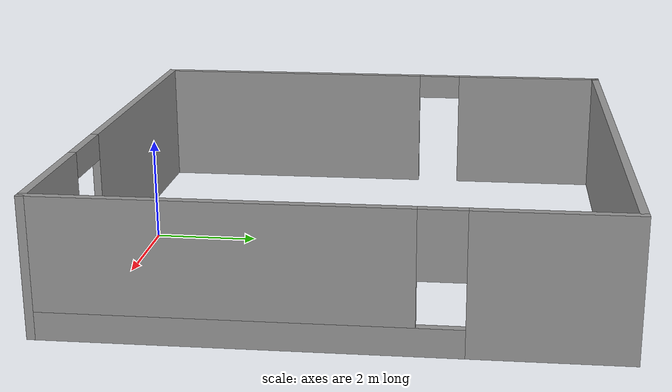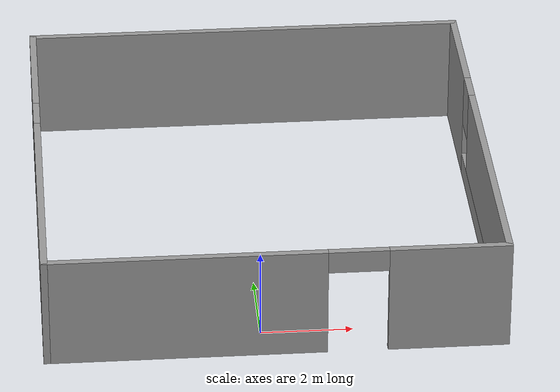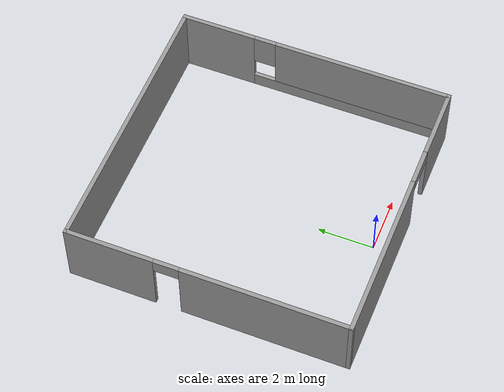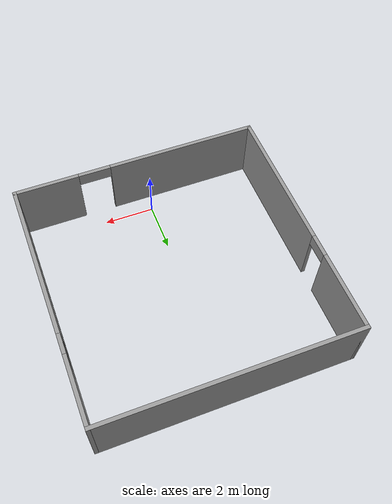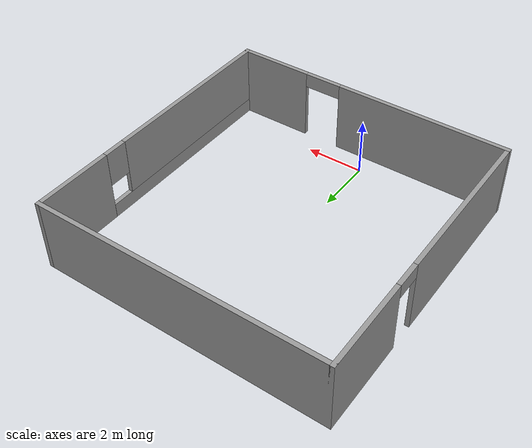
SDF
<?xml version='1.0'?>
<sdf version='1.7'>
  <model name='wall'>
    <pose>0.300512 4.15861 0 0 -0 0</pose>
    <link name='Wall_3'>
      <pose>-4.925 0 0 0 -0 1.5708</pose>
      <visual name='Wall_3_Visual_0'>
        <pose>-2.03364 0 1.25 0 -0 0</pose>
        <geometry>
          <box>
            <size>5.93272 0.15 2.5</size>
          </box>
        </geometry>
        <material>
          <script>
            <uri>file://media/materials/scripts/gazebo.material</uri>
            <name>Gazebo/Grey</name>
          </script>
          <ambient>1 1 1 1</ambient>
        </material>
        <meta>
          <layer>0</layer>
        </meta>
      </visual>
      <collision name='Wall_3_Collision_0'>
        <geometry>
          <box>
            <size>5.93272 0.15 2.5</size>
          </box>
        </geometry>
        <pose>-2.03364 0 1.25 0 -0 0</pose>
      </collision>
      <visual name='Wall_3_Visual_1'>
        <pose>3.41636 0 1.25 0 -0 0</pose>
        <geometry>
          <box>
            <size>3.16728 0.15 2.5</size>
          </box>
        </geometry>
        <material>
          <script>
            <uri>file://media/materials/scripts/gazebo.material</uri>
            <name>Gazebo/Grey</name>
          </script>
          <ambient>1 1 1 1</ambient>
        </material>
        <meta>
          <layer>0</layer>
        </meta>
      </visual>
      <collision name='Wall_3_Collision_1'>
        <geometry>
          <box>
            <size>3.16728 0.15 2.5</size>
          </box>
        </geometry>
        <pose>3.41636 0 1.25 0 -0 0</pose>
      </collision>
      <visual name='Wall_3_Visual_2'>
        <pose>1.38272 0 2.25 0 -0 0</pose>
        <geometry>
          <box>
            <size>0.9 0.15 0.5</size>
          </box>
        </geometry>
        <material>
          <script>
            <uri>file://media/materials/scripts/gazebo.material</uri>
            <name>Gazebo/Grey</name>
          </script>
          <ambient>1 1 1 1</ambient>
        </material>
        <meta>
          <layer>0</layer>
        </meta>
      </visual>
      <collision name='Wall_3_Collision_2'>
        <geometry>
          <box>
            <size>0.9 0.15 0.5</size>
          </box>
        </geometry>
        <pose>1.38272 0 2.25 0 -0 0</pose>
      </collision>
    </link>
    <link name='Wall_4'>
      <collision name='Wall_4_Collision'>
        <geometry>
          <box>
            <size>10 0.15 2.5</size>
          </box>
        </geometry>
        <pose>0 0 1.25 0 -0 0</pose>
      </collision>
      <visual name='Wall_4_Visual'>
        <pose>0 0 1.25 0 -0 0</pose>
        <geometry>
          <box>
            <size>10 0.15 2.5</size>
          </box>
        </geometry>
        <material>
          <script>
            <uri>file://media/materials/scripts/gazebo.material</uri>
            <name>Gazebo/Grey</name>
          </script>
          <ambient>1 1 1 1</ambient>
        </material>
        <meta>
          <layer>0</layer>
        </meta>
      </visual>
      <pose>0 4.925 0 0 -0 0</pose>
    </link>
    <link name='Wall_5'>
      <pose>4.925 0 0 0 -0 -1.5708</pose>
      <visual name='Wall_5_Visual_0'>
        <pose>-3.62315 0 1.25 0 -0 0</pose>
        <geometry>
          <box>
            <size>2.75371 0.15 2.5</size>
          </box>
        </geometry>
        <material>
          <script>
            <uri>file://media/materials/scripts/gazebo.material</uri>
            <name>Gazebo/Grey</name>
          </script>
          <ambient>1 1 1 1</ambient>
        </material>
        <meta>
          <layer>0</layer>
        </meta>
      </visual>
      <collision name='Wall_5_Collision_0'>
        <geometry>
          <box>
            <size>2.75371 0.15 2.5</size>
          </box>
        </geometry>
        <pose>-3.62315 0 1.25 0 -0 0</pose>
      </collision>
      <visual name='Wall_5_Visual_1'>
        <pose>1.37685 0 0.25 0 -0 0</pose>
        <geometry>
          <box>
            <size>7.24629 0.15 0.5</size>
          </box>
        </geometry>
        <material>
          <script>
            <uri>file://media/materials/scripts/gazebo.material</uri>
            <name>Gazebo/Grey</name>
          </script>
          <ambient>1 1 1 1</ambient>
        </material>
        <meta>
          <layer>0</layer>
        </meta>
      </visual>
      <collision name='Wall_5_Collision_1'>
        <geometry>
          <box>
            <size>7.24629 0.15 0.5</size>
          </box>
        </geometry>
        <pose>1.37685 0 0.25 0 -0 0</pose>
      </collision>
      <visual name='Wall_5_Visual_2'>
        <pose>1.77685 0 1.5 0 -0 0</pose>
        <geometry>
          <box>
            <size>6.44629 0.15 2</size>
          </box>
        </geometry>
        <material>
          <script>
            <uri>file://media/materials/scripts/gazebo.material</uri>
            <name>Gazebo/Grey</name>
          </script>
          <ambient>1 1 1 1</ambient>
        </material>
        <meta>
          <layer>0</layer>
        </meta>
      </visual>
      <collision name='Wall_5_Collision_2'>
        <geometry>
          <box>
            <size>6.44629 0.15 2</size>
          </box>
        </geometry>
        <pose>1.77685 0 1.5 0 -0 0</pose>
      </collision>
      <visual name='Wall_5_Visual_3'>
        <pose>-1.84629 0 1.9 0 -0 0</pose>
        <geometry>
          <box>
            <size>0.8 0.15 1.2</size>
          </box>
        </geometry>
        <material>
          <script>
            <uri>file://media/materials/scripts/gazebo.material</uri>
            <name>Gazebo/Grey</name>
          </script>
          <ambient>1 1 1 1</ambient>
        </material>
        <meta>
          <layer>0</layer>
        </meta>
      </visual>
      <collision name='Wall_5_Collision_3'>
        <geometry>
          <box>
            <size>0.8 0.15 1.2</size>
          </box>
        </geometry>
        <pose>-1.84629 0 1.9 0 -0 0</pose>
      </collision>
    </link>
    <link name='Wall_6'>
      <pose>0 -4.925 0 0 -0 3.14159</pose>
      <visual name='Wall_6_Visual_0'>
        <pose>-3.68838 0 1.25 0 -0 0</pose>
        <geometry>
          <box>
            <size>2.62325 0.15 2.5</size>
          </box>
        </geometry>
        <material>
          <script>
            <uri>file://media/materials/scripts/gazebo.material</uri>
            <name>Gazebo/Grey</name>
          </script>
          <ambient>1 1 1 1</ambient>
        </material>
        <meta>
          <layer>0</layer>
        </meta>
      </visual>
      <collision name='Wall_6_Collision_0'>
        <geometry>
          <box>
            <size>2.62325 0.15 2.5</size>
          </box>
        </geometry>
        <pose>-3.68838 0 1.25 0 -0 0</pose>
      </collision>
      <visual name='Wall_6_Visual_1'>
        <pose>1.962 0 1.25 0 -0 0</pose>
        <geometry>
          <box>
            <size>6.076 0.15 2.5</size>
          </box>
        </geometry>
        <material>
          <script>
            <uri>file://media/materials/scripts/gazebo.material</uri>
            <name>Gazebo/Grey</name>
          </script>
          <ambient>1 1 1 1</ambient>
        </material>
        <meta>
          <layer>0</layer>
        </meta>
      </visual>
      <collision name='Wall_6_Collision_1'>
        <geometry>
          <box>
            <size>6.076 0.15 2.5</size>
          </box>
        </geometry>
        <pose>1.962 0 1.25 0 -0 0</pose>
      </collision>
      <visual name='Wall_6_Visual_2'>
        <pose>-1.72637 0 2.25 0 -0 0</pose>
        <geometry>
          <box>
            <size>1.30076 0.15 0.5</size>
          </box>
        </geometry>
        <material>
          <script>
            <uri>file://media/materials/scripts/gazebo.material</uri>
            <name>Gazebo/Grey</name>
          </script>
          <ambient>1 1 1 1</ambient>
        </material>
        <meta>
          <layer>0</layer>
        </meta>
      </visual>
      <collision name='Wall_6_Collision_2'>
        <geometry>
          <box>
            <size>1.30076 0.15 0.5</size>
          </box>
        </geometry>
        <pose>-1.72637 0 2.25 0 -0 0</pose>
      </collision>
    </link>
    <static>1</static>
  </model>
</sdf>
